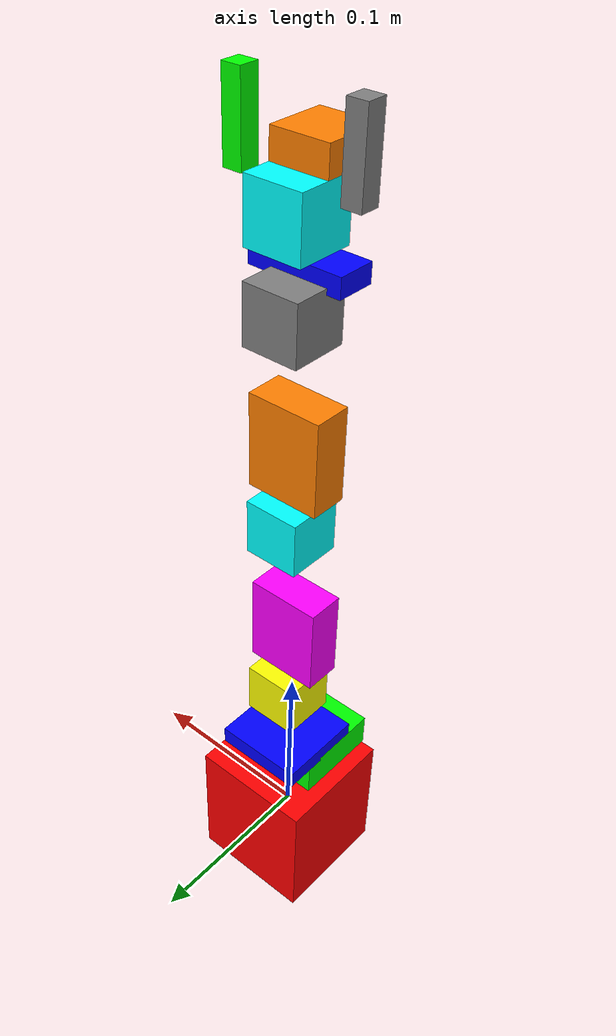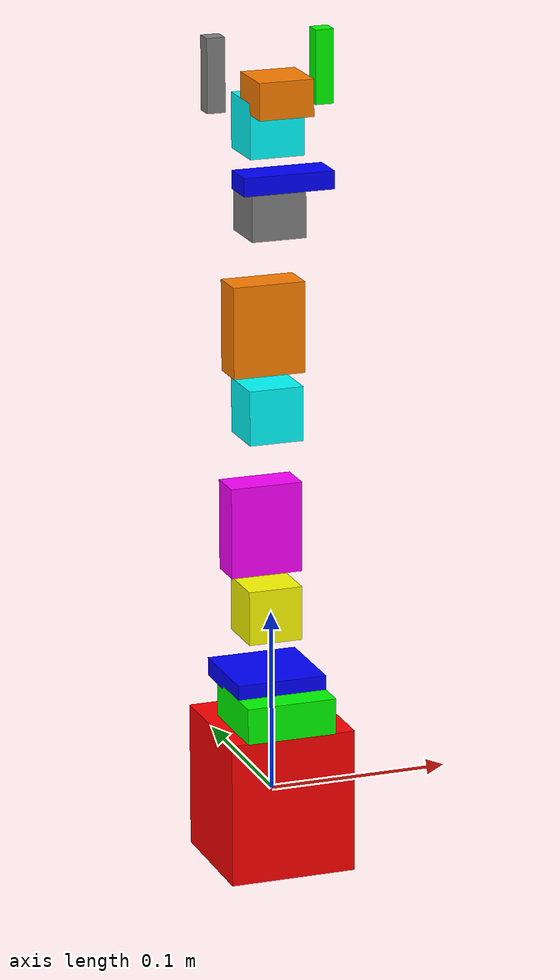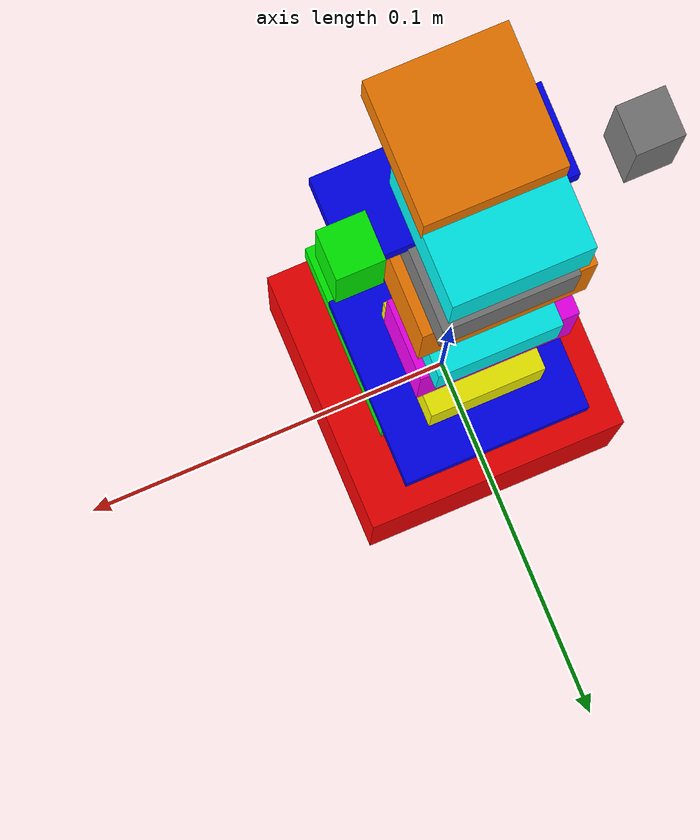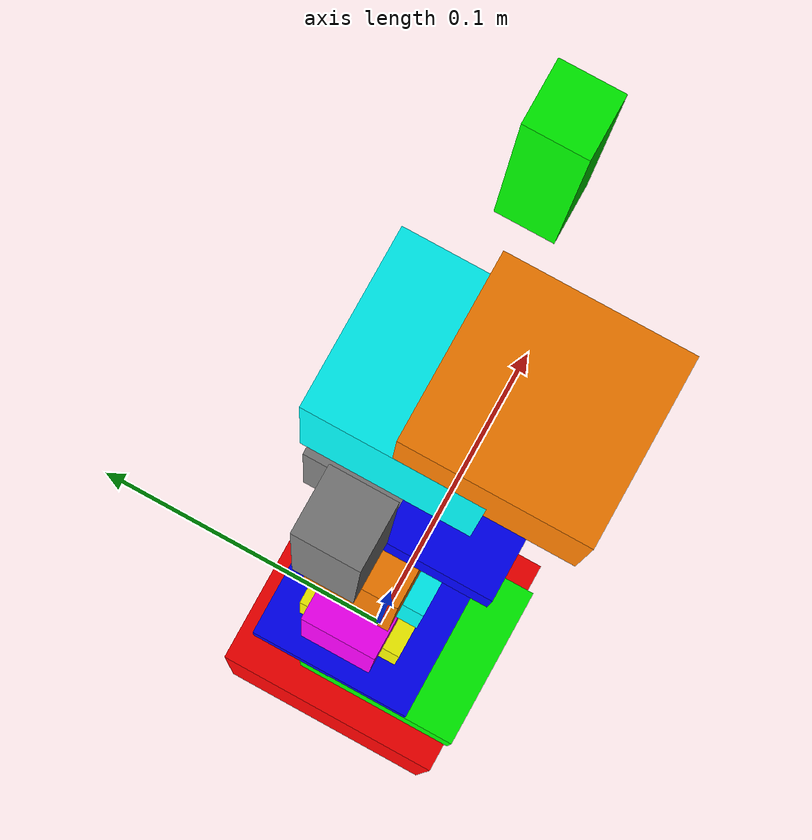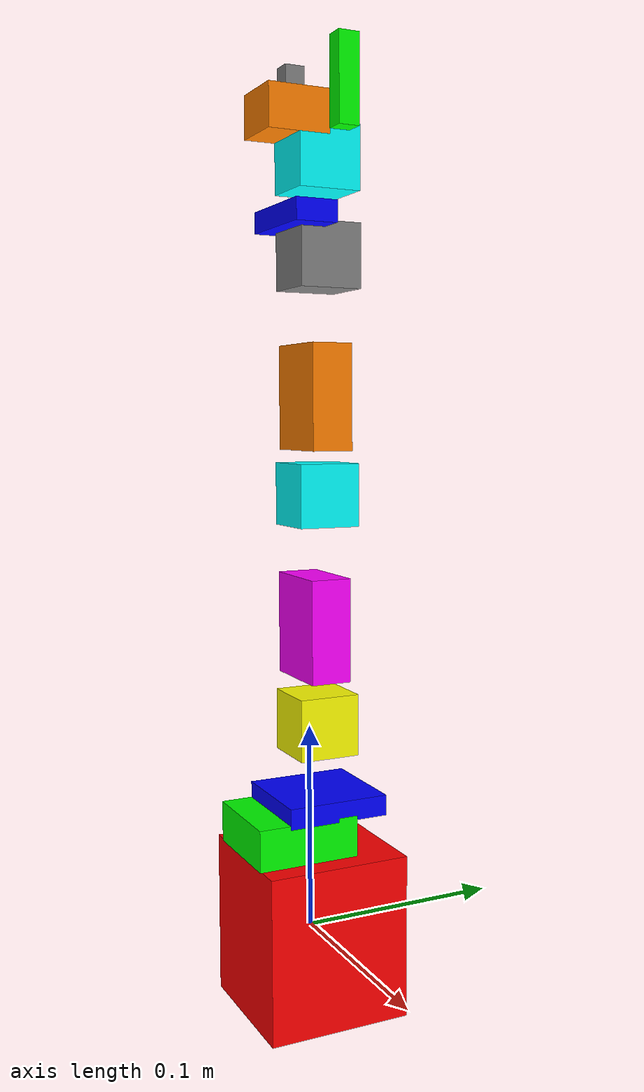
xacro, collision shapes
<?xml version="1.0"?>

<robot xmlns:xacro="http://www.ros.org/wiki/xacro" name="arm">
<!--2.b inclusione del file xacro che definisce l'hardware interface per ros2_control -->
<xacro:include filename="armando_hardware_interface.xacro"/>
<!--3.b inclusione del file xacro che definisce le specifiche della camera -->
<xacro:include filename="armando_camera.xacro"/>
<xacro:arg name="armando_gazebo_path" default="$(find armando_gazebo)"/>

  <material name="red">
    <color rgba="1 0 0 1"/>
  </material>

  <material name="green">
    <color rgba="0 1 0 1"/>
  </material>

  <material name="blue">
    <color rgba="0 0 1 1"/>
  </material>

  <material name="yellow">
    <color rgba="1 1 0 1"/>
  </material>

  <material name="magenta">
    <color rgba="1 0 1 1"/>
  </material>

  <material name="cyan">
    <color rgba="0 1 1 1"/>
  </material>

  <material name="gray">
    <color rgba="0.5 0.5 0.5 1"/>
  </material>

  <material name="orange">
    <color rgba="1 0.5 0 1"/>
  </material>

  <link name="base_link">
    <visual>
      <geometry>
        <mesh filename="file://$(arg armando_gazebo_path)/meshes/base_link.stl" scale="0.001 0.001 0.001"/>
      </geometry>
      <origin rpy="0 0 0" xyz="0 0 0"/>
      <material name="red"/>
    </visual>
    <collision>
      <geometry>
        <box size="0.07 0.07 0.08"/>
      </geometry>
      <origin rpy="0 0 0" xyz="0 0 0"/>
    </collision>
    <inertial>
      <mass value="0.1"/>
      <inertia ixx="1.06682889e+08" ixy="0.0" ixz="0.0" iyy="9.92165844e+07" iyz="0.0" izz="1.26939175e+08"/>
    </inertial>
  </link>

  <joint name="base_1_2" type="fixed">
    <parent link="base_link"/>
    <child link="base_turn"/>
    <origin xyz="-0.0011 -0.011 0.05"/>
  </joint>

  <link name="base_turn">
    <visual>
      <geometry>
        <mesh filename="file://$(arg armando_gazebo_path)/meshes/base_turn.stl" scale="0.001 0.001 0.001"/>
      </geometry>
      <origin rpy="0 0 0" xyz="0 0 0"/>
      <material name="green"/>
    </visual>
    <collision>
      <geometry>
        <box size="0.05 0.05 0.02"/>
      </geometry>
      <origin rpy="0 0 0" xyz="0 0 0"/>
    </collision>
    <inertial>
      <mass value="0.1"/>
      <inertia ixx="1.35223008e+07" ixy="0.0" ixz="0.0" iyy="8.13814925e+06" iyz="0.0" izz="2.14903814e+07"/>
    </inertial>
  </link>

  <joint name="j0" type="revolute">
    <parent link="base_turn"/>
    <child link="base_turn_rot"/>
    <origin xyz="-0.0 0.0155 0.013" rpy = "0 0 -1.57"/>
    <axis xyz="0 0 1" />
    <limit effort="300" velocity="0.1" lower="-2.57" upper="2.57"/>
  </joint>

  <link name="base_turn_rot">
    <visual>
      <geometry>
        <mesh filename="file://$(arg armando_gazebo_path)/meshes/base_turn_table_rot.stl" scale="0.001 0.001 0.001"/>
      </geometry>
      <material name="blue"/>
    </visual>
    <collision>
      <geometry>
        <box size="0.05 0.05 0.01"/>
      </geometry>
      <origin rpy="0 0 0" xyz="0 0 0"/>
    </collision>

    <inertial>
      <mass value="0.1"/>
      <inertia ixx="0.001" ixy="0.0" ixz="0.0" iyy="0.001" iyz="0.0" izz="0.001"/>
    </inertial>
  </link>

  <joint name="base_turn_rot_dyn2" type="fixed">
    <parent link="base_turn_rot"/>
    <child link="dyn2"/>
    <origin xyz="0 0 0.0385" rpy="0 1.57 1.57 "/>
  </joint>

  <link name="dyn2">
    <visual>
      <geometry>
        <mesh filename="file://$(arg armando_gazebo_path)/meshes/dyn.stl" scale="0.01 0.01 0.01"/>
      </geometry>
      <origin rpy="0 0 0" xyz="0 0 0"/>
      <material name="yellow"/>
    </visual>
    <collision>
      <geometry>
        <box size="0.03 0.03 0.03"/>
      </geometry>
      <origin rpy="0 0 0" xyz="0 0 0"/>
    </collision>
     <inertial>
      <mass value="0.1"/>
      <inertia ixx="6.90013881e-05" ixy="0.0" ixz="0.0" iyy="1.24554875e-04" iyz="0.0" izz="1.04295793e-04"/>
    </inertial>
  </link>

  <joint name="j1" type="revolute">
    <parent link="dyn2"/>
    <child link="dyn2_r"/>
    <origin xyz="0 0 0.0" rpy="0 0 0"/>
    <axis xyz="0 0 1" />
    <limit effort="300" velocity="0.1" lower="-3.14" upper="3.14"/>
  </joint>

  <link name="dyn2_r">

  </link>

  <joint name="dyn2_f4" type="fixed">
    <parent link="dyn2_r"/>
    <child link="f4"/>
    <origin xyz="-0.047 0.0 -0.003" rpy="0 1.57 1.57"/>
  </joint>

  <link name="f4">
    <visual>
      <geometry>
        <mesh filename="file://$(arg armando_gazebo_path)/meshes/f4_n_f3.stl" scale="0.001 0.001 0.001"/>
      </geometry>
      <origin rpy="0 0 0" xyz="0 0 0"/>
      <material name="magenta"/>
    </visual>
    <collision>
      <geometry>
        <box size="0.04 0.05 0.02"/>
      </geometry>
      <origin rpy="0 0 0" xyz="0 0 0"/>
    </collision>
     <inertial>
      <mass value="0.1"/>
      <inertia ixx="6.90013881e-05" ixy="0.0" ixz="0.0" iyy="1.24554875e-04" iyz="0.0" izz="1.04295793e-04"/>
    </inertial>
  </link>

  <joint name="d4_dyn3" type="fixed">
    <parent link="f4"/>
    <child link="dyn3"/>
    <origin xyz="-0.004 0.0645 0 " rpy="-1.57 3.14 1.57"/>
  </joint>

  <link name="dyn3">
    <visual>
      <geometry>
        <mesh filename="file://$(arg armando_gazebo_path)/meshes/dyn.stl" scale="0.01 0.01 0.01"/>
      </geometry>
      <origin rpy="0 0 0" xyz="0 0 0"/>
      <material name="cyan"/>
    </visual>
    <collision>
      <geometry>
        <box size="0.03 0.03 0.03"/>
      </geometry>
      <origin rpy="0 0 0" xyz="0 0 0"/>
    </collision>
     <inertial>
      <mass value="0.1"/>
      <inertia ixx="6.90013881e-05" ixy="0.0" ixz="0.0" iyy="1.24554875e-04" iyz="0.0" izz="1.04295793e-04"/>
    </inertial>
  </link>

  <joint name="j2" type="revolute">
    <parent link="dyn3"/>
    <child link="dyn3_r"/>
    <origin xyz="0 0 0.0" rpy="0 0 0"/>
    <axis xyz="0 0 1" />
    <limit effort="300" velocity="0.1" lower="-3.14" upper="3.14"/>
  </joint>

 <link name="dyn3_r">

  </link>

  <joint name="dyn3_f5" type="fixed">
    <parent link="dyn3_r"/>
    <child link="f5"/>
    <origin xyz="-0.046 -0.0 -0.002" rpy="1.57 1.57 3.1415 "/>
  </joint>

  <link name="f5">
    <visual>
      <geometry>
        <mesh filename="file://$(arg armando_gazebo_path)/meshes/f4_n_f3.stl" scale="0.001 0.001 0.001"/>
      </geometry>
      <origin rpy="0 0 0" xyz="0 0 0"/>
      <material name="orange"/>
    </visual>
    <collision>
      <geometry>
        <box size="0.04 0.05 0.02"/>
      </geometry>
      <origin rpy="0 0 0" xyz="0 0 0"/>
    </collision>

    <inertial>
      <mass value="0.1"/>
  <inertia ixx="0.001" ixy="0.0" ixz="0.0" iyy="0.001" iyz="0.0" izz="0.001"/>    </inertial>
  </link>

  <joint name="f5_dyn4" type="fixed">
    <parent link="f5"/>
    <child link="dyn4"/>
    <origin xyz="-0.004 0.065 -0.0" rpy="-1.57 3.1415 1.57 "/>
  </joint>

  <link name="dyn4">
    <visual>
      <geometry>
        <mesh filename="file://$(arg armando_gazebo_path)/meshes/dyn.stl" scale="0.01 0.01 0.01"/>
      </geometry>
      <origin rpy="0 0 0" xyz="0 0 0"/>
      <material name="gray"/>
    </visual>
    <collision>
      <geometry>
        <box size="0.03 0.03 0.03"/>
      </geometry>
      <origin rpy="0 0 0" xyz="0 0 0"/>
    </collision>

    <inertial>
      <mass value="0.1"/>
      <inertia ixx="6.90013881e-05" ixy="0.0" ixz="0.0" iyy="1.24554875e-04" iyz="0.0" izz="1.04295793e-04"/>
    </inertial>
  </link>

  <joint name="j3" type="revolute">
    <parent link="dyn4"/>
    <child link="dyn4_r"/>
    <origin xyz="0 0 0.0" rpy="0 0 0"/>
    <axis xyz="0 0 1" />
    <limit effort="300" velocity="0.1" lower="-3.14" upper="3.14"/>
  </joint>

  <link name="dyn4_r">

  </link>

  <joint name="f5_wrist" type="fixed">
    <parent link="dyn4_r"/>
    <child link="wrist"/>
    <origin xyz="-0.017 -0.013 0.003" rpy="1.57 1.57 -1.57"/>
  </joint>

  <link name="wrist">
    <visual>
      <geometry>
        <mesh filename="file://$(arg armando_gazebo_path)/meshes/wrist.stl" scale="0.001 0.001 0.001"/>
      </geometry>
      <origin rpy="0 0 0" xyz="0 0 0"/>
      <material name="blue"/>
    </visual>
    <collision>
      <geometry>
        <box size="0.05 0.02 0.01"/>
      </geometry>
      <origin rpy="0 0 0" xyz="0 0 0"/>
    </collision>

     <inertial>
      <mass value="0.1"/>
      <inertia ixx="6.90013881e-05" ixy="0.0" ixz="0.0" iyy="1.24554875e-04" iyz="0.0" izz="1.04295793e-04"/>
    </inertial>
  </link>

  <joint name="wrist_dyn5" type="fixed">
    <parent link="wrist"/>
    <child link="dyn5"/>
    <origin xyz="0.0038 -0.013 0.0275" rpy="0 0 1.57"/>
  </joint>

    <link name="dyn5">
    <visual>
      <geometry>
        <mesh filename="file://$(arg armando_gazebo_path)/meshes/dyn.stl" scale="0.01 0.01 0.01"/>
      </geometry>
      <origin rpy="0 0 0" xyz="0 0 0"/>
      <material name="cyan"/>
    </visual>
    <collision>
      <geometry>
        <box size="0.03 0.03 0.03"/>
      </geometry>
      <origin rpy="0 0 0" xyz="0 0 0"/>
    </collision>

    <inertial>
      <mass value="0.1"/>
      <inertia ixx="6.90013881e-05" ixy="0.0" ixz="0.0" iyy="1.24554875e-04" iyz="0.0" izz="1.04295793e-04"/>
    </inertial>
  </link>

  <joint name="dyn5_dyn5_r" type="fixed">
    <parent link="dyn5"/>
    <child link="dyn5_r"/>
    <origin xyz="0 0 0.0" rpy="0 0 0"/>
    <axis xyz="0 0 1" />
    <limit effort="300" velocity="0.1" lower="-3.14" upper="3.14"/>
  </joint>

  <link name="dyn5_r">

  </link>

  <joint name="wrist_rotate_dyn5" type="fixed">
    <parent link="dyn5_r"/>
    <child link="crawer_base"/>
    <origin xyz="0.015 0 0.019" rpy="0 0 1.57"/>
  </joint>

  <link name="crawer_base">
    <visual>
      <geometry>
        <mesh filename="file://$(arg armando_gazebo_path)/meshes/the_crawer_base.stl" scale="0.001 0.001 0.001"/>
      </geometry>
      <origin rpy="0 0 0" xyz="0 0 0"/>
      <material name="orange"/>
    </visual>
    <collision>
      <geometry>
        <box size="0.03 0.03 0.02"/>
      </geometry>
      <origin rpy="0 0 0" xyz="0 0 0"/>
    </collision>

    <inertial>
      <mass value="0.1"/>
      <inertia ixx="6.90013881e-05" ixy="0.0" ixz="0.0" iyy="1.24554875e-04" iyz="0.0" izz="1.04295793e-04"/>
    </inertial>
  </link>

  <joint name="crawer_base_crawer_left" type="fixed">
    <parent link="crawer_base"/>
    <child link="crawer_left"/>
    <origin xyz="-0.03 0.015 0.01" rpy="0 -1.57 0"/>
  </joint>

  <link name="crawer_left">
    <visual>
      <geometry>
        <mesh filename="file://$(arg armando_gazebo_path)/meshes/the_crawer.stl" scale="0.001 0.001 0.001"/>
      </geometry>
      <origin rpy="0 0 0" xyz="0 0 0"/>
      <material name="gray"/>
    </visual>
    <collision>
      <geometry>
        <box size="0.04 0.01 0.01"/>
      </geometry>
      <origin rpy="0 0 0" xyz="0 0 0"/>
    </collision>

    <inertial>
      <mass value="0.1"/>
      <inertia ixx="6.90013881e-05" ixy="0.0" ixz="0.0" iyy="1.24554875e-04" iyz="0.0" izz="1.04295793e-04"/>
    </inertial>
  </link>

  <joint name="crawer_base_crawer_right" type="fixed">
    <parent link="crawer_base"/>
    <child link="crawer_right"/>
    <origin xyz="0.03 0.015 0.01" rpy="3.1415 -1.57 0"/>
  </joint>

  <link name="crawer_right">
    <visual>
      <geometry>
        <mesh filename="file://$(arg armando_gazebo_path)/meshes/the_crawer.stl" scale="0.001 0.001 0.001"/>
      </geometry>
      <origin rpy="0 0 0" xyz="0 0 0"/>
      <material name="green"/>
    </visual>
    <collision>
      <geometry>
        <box size="0.04 0.01 0.01"/>
      </geometry>
      <origin rpy="0 0 0" xyz="0 0 0"/>
    </collision>

    <inertial>
      <mass value="0.1"/>
      <inertia ixx="6.90013881e-05" ixy="0.0" ixz="0.0" iyy="1.24554875e-04" iyz="0.0" izz="1.04295793e-04"/>
    </inertial>
  </link>

<!-- definizione dei parametri tramite file .yaml  -->
  <gazebo>
    <plugin filename="ign_ros2_control-system" name="ign_ros2_control::IgnitionROS2ControlPlugin">
    <parameters>$(find armando_gazebo)/config/arm_params.yaml</parameters>
      <controller_manager_prefix_node_name>controller_manager</controller_manager_prefix_node_name>
    </plugin>
  </gazebo>

  <gazebo>
      <plugin filename="gz-sim-sensors-system"
          name="gz::sim::systems::Sensors">
      <render_engine>ogre2</render_engine>
      </plugin>
  </gazebo>

<!--3.a definizione camera_joint e camera_link -->
  <joint name="camera_joint" type="fixed">
    <parent link="base_link"/>
    <child link="camera_link"/>
    <origin xyz="0.0 0.0 0.1" rpy="0 0 3.14"/>
  </joint>

  <xacro:camera_link name="camera" camera_pos="0 0 0.1"/>

  <link name="camera_link">
      <visual>
          <geometry>
              <box size="0.0000010 0.00000003 0.00000003"/>
          </geometry>
          <material name="red"/>
      </visual>
  </link>

  <ros2_control name="HardwareInterface_Ignition" type="system">

    <hardware>
      <plugin>ign_ros2_control/IgnitionSystem</plugin>
    </hardware>

    <xacro:hardware_joint name="j0" initial_pos="0.0"/>
    <xacro:hardware_joint name="j1" initial_pos="0.0"/>
    <xacro:hardware_joint name="j2" initial_pos="0.0"/>
    <xacro:hardware_joint name="j3" initial_pos="0.0"/>

  </ros2_control>

</robot>
